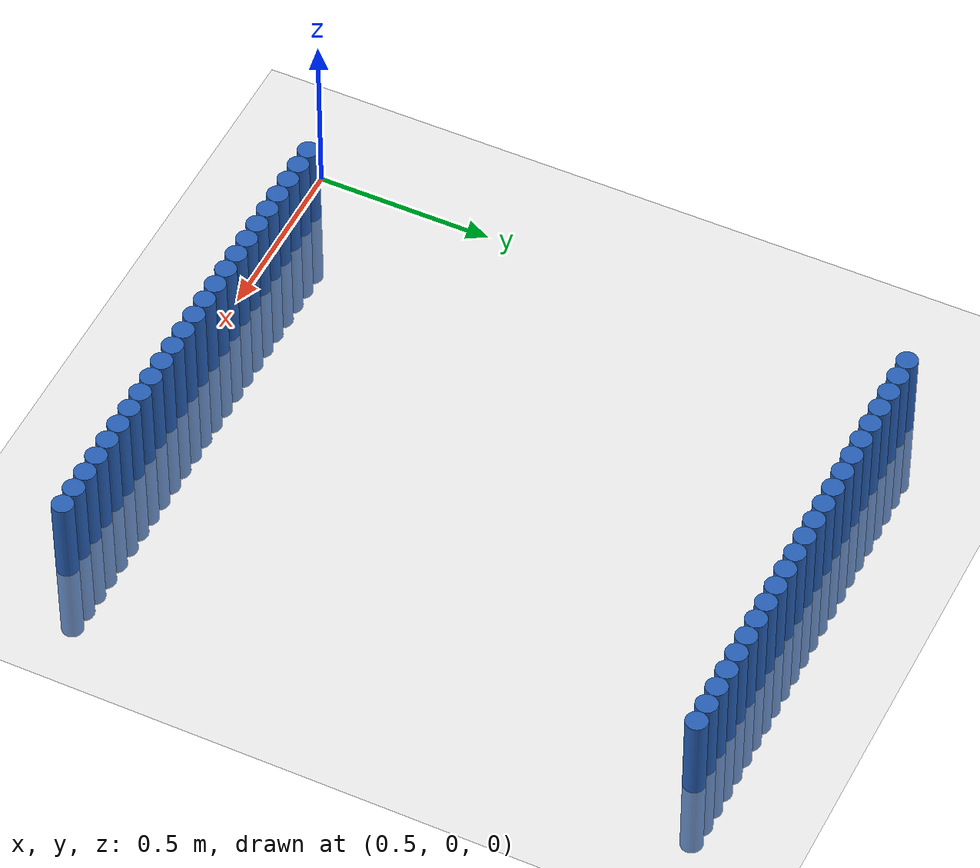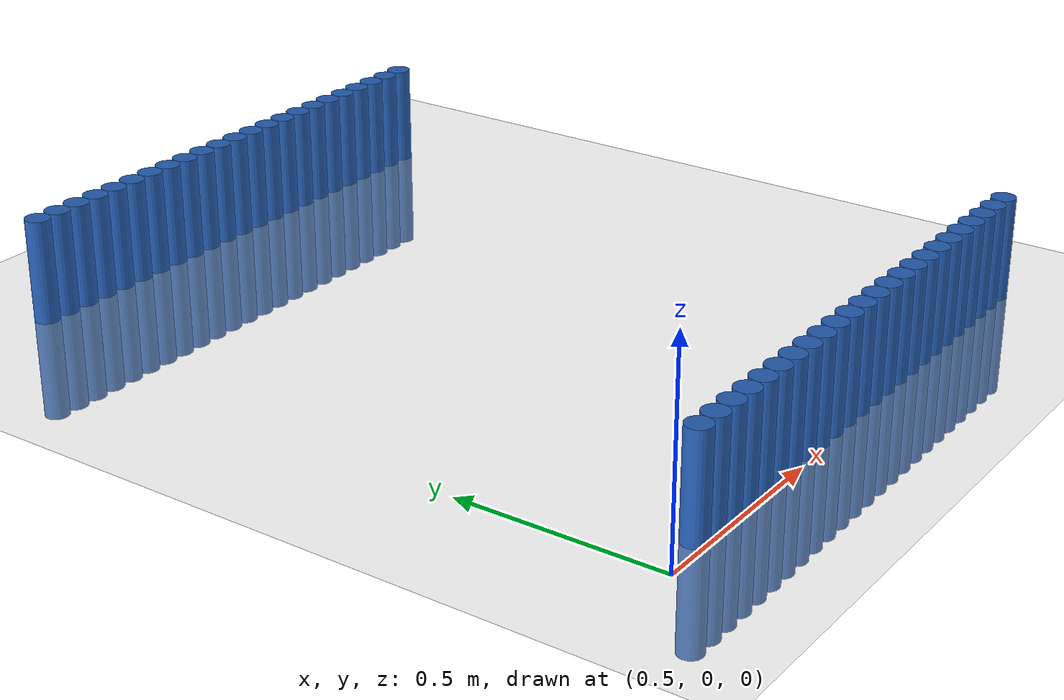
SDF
<sdf version="1.6">
 <world name="default">
  <model name="ground_plane">
   <static>1</static>
   <link name="link">
    <collision name="collision">
     <geometry><plane><normal>0 0 1</normal><size>100 100</size></plane></geometry>
     <surface><friction><ode><mu>100</mu><mu2>50</mu2></ode></friction></surface>
    </collision>
    <visual name="visual">
     <cast_shadows>0</cast_shadows>
     <geometry><plane><normal>0 0 1</normal><size>100 100</size></plane></geometry>
     <material>
      <script><uri>file://media/materials/scripts/gazebo.material</uri><name>Gazebo/Grey</name></script>
     </material>
    </visual>
   </link>
  </model>
  <model name="unit_cylinder_47">
   <static>1</static>
   <pose>0.630000 0.030000 0.000000 0.000000 0.000000 0.000000</pose>
   <link name="link">
    <inertial>
     <mass>1</mass>
     <inertia><ixx>0.145833</ixx><ixy>0</ixy><ixz>0</ixz><iyy>0.145833</iyy><iyz>0</iyz><izz>0.125</izz></inertia>
    </inertial>
    <collision name="collision">
     <geometry><cylinder><radius>0.030000</radius><length>0.5</length></cylinder></geometry>
    </collision>
    <visual name="visual">
     <geometry><cylinder><radius>0.030000</radius><length>0.5</length></cylinder></geometry>
     <material>
      <ambient>0.152000 0.379000 0.720000 1</ambient>
      <diffuse>0.152000 0.379000 0.720000 1</diffuse>
     </material>
     <material>
      <script><name>Gazebo/Grey</name><uri>file://media/materials/scripts/gazebo.material</uri></script>
     </material>
    </visual>
   </link>
  </model>
  <model name="unit_cylinder_48">
   <static>1</static>
   <pose>0.630000 1.770000 0.000000 0.000000 0.000000 0.000000</pose>
   <link name="link">
    <inertial>
     <mass>1</mass>
     <inertia><ixx>0.145833</ixx><ixy>0</ixy><ixz>0</ixz><iyy>0.145833</iyy><iyz>0</iyz><izz>0.125</izz></inertia>
    </inertial>
    <collision name="collision">
     <geometry><cylinder><radius>0.030000</radius><length>0.5</length></cylinder></geometry>
    </collision>
    <visual name="visual">
     <geometry><cylinder><radius>0.030000</radius><length>0.5</length></cylinder></geometry>
     <material>
      <ambient>0.152000 0.379000 0.720000 1</ambient>
      <diffuse>0.152000 0.379000 0.720000 1</diffuse>
     </material>
     <material>
      <script><name>Gazebo/Grey</name><uri>file://media/materials/scripts/gazebo.material</uri></script>
     </material>
    </visual>
   </link>
  </model>
  <model name="unit_cylinder_49">
   <static>1</static>
   <pose>0.690000 0.030000 0.000000 0.000000 0.000000 0.000000</pose>
   <link name="link">
    <inertial>
     <mass>1</mass>
     <inertia><ixx>0.145833</ixx><ixy>0</ixy><ixz>0</ixz><iyy>0.145833</iyy><iyz>0</iyz><izz>0.125</izz></inertia>
    </inertial>
    <collision name="collision">
     <geometry><cylinder><radius>0.030000</radius><length>0.5</length></cylinder></geometry>
    </collision>
    <visual name="visual">
     <geometry><cylinder><radius>0.030000</radius><length>0.5</length></cylinder></geometry>
     <material>
      <ambient>0.152000 0.379000 0.720000 1</ambient>
      <diffuse>0.152000 0.379000 0.720000 1</diffuse>
     </material>
     <material>
      <script><name>Gazebo/Grey</name><uri>file://media/materials/scripts/gazebo.material</uri></script>
     </material>
    </visual>
   </link>
  </model>
  <model name="unit_cylinder_50">
   <static>1</static>
   <pose>0.690000 1.770000 0.000000 0.000000 0.000000 0.000000</pose>
   <link name="link">
    <inertial>
     <mass>1</mass>
     <inertia><ixx>0.145833</ixx><ixy>0</ixy><ixz>0</ixz><iyy>0.145833</iyy><iyz>0</iyz><izz>0.125</izz></inertia>
    </inertial>
    <collision name="collision">
     <geometry><cylinder><radius>0.030000</radius><length>0.5</length></cylinder></geometry>
    </collision>
    <visual name="visual">
     <geometry><cylinder><radius>0.030000</radius><length>0.5</length></cylinder></geometry>
     <material>
      <ambient>0.152000 0.379000 0.720000 1</ambient>
      <diffuse>0.152000 0.379000 0.720000 1</diffuse>
     </material>
     <material>
      <script><name>Gazebo/Grey</name><uri>file://media/materials/scripts/gazebo.material</uri></script>
     </material>
    </visual>
   </link>
  </model>
  <model name="unit_cylinder_51">
   <static>1</static>
   <pose>0.750000 0.030000 0.000000 0.000000 0.000000 0.000000</pose>
   <link name="link">
    <inertial>
     <mass>1</mass>
     <inertia><ixx>0.145833</ixx><ixy>0</ixy><ixz>0</ixz><iyy>0.145833</iyy><iyz>0</iyz><izz>0.125</izz></inertia>
    </inertial>
    <collision name="collision">
     <geometry><cylinder><radius>0.030000</radius><length>0.5</length></cylinder></geometry>
    </collision>
    <visual name="visual">
     <geometry><cylinder><radius>0.030000</radius><length>0.5</length></cylinder></geometry>
     <material>
      <ambient>0.152000 0.379000 0.720000 1</ambient>
      <diffuse>0.152000 0.379000 0.720000 1</diffuse>
     </material>
     <material>
      <script><name>Gazebo/Grey</name><uri>file://media/materials/scripts/gazebo.material</uri></script>
     </material>
    </visual>
   </link>
  </model>
  <model name="unit_cylinder_52">
   <static>1</static>
   <pose>0.750000 1.770000 0.000000 0.000000 0.000000 0.000000</pose>
   <link name="link">
    <inertial>
     <mass>1</mass>
     <inertia><ixx>0.145833</ixx><ixy>0</ixy><ixz>0</ixz><iyy>0.145833</iyy><iyz>0</iyz><izz>0.125</izz></inertia>
    </inertial>
    <collision name="collision">
     <geometry><cylinder><radius>0.030000</radius><length>0.5</length></cylinder></geometry>
    </collision>
    <visual name="visual">
     <geometry><cylinder><radius>0.030000</radius><length>0.5</length></cylinder></geometry>
     <material>
      <ambient>0.152000 0.379000 0.720000 1</ambient>
      <diffuse>0.152000 0.379000 0.720000 1</diffuse>
     </material>
     <material>
      <script><name>Gazebo/Grey</name><uri>file://media/materials/scripts/gazebo.material</uri></script>
     </material>
    </visual>
   </link>
  </model>
  <model name="unit_cylinder_53">
   <static>1</static>
   <pose>0.810000 0.030000 0.000000 0.000000 0.000000 0.000000</pose>
   <link name="link">
    <inertial>
     <mass>1</mass>
     <inertia><ixx>0.145833</ixx><ixy>0</ixy><ixz>0</ixz><iyy>0.145833</iyy><iyz>0</iyz><izz>0.125</izz></inertia>
    </inertial>
    <collision name="collision">
     <geometry><cylinder><radius>0.030000</radius><length>0.5</length></cylinder></geometry>
    </collision>
    <visual name="visual">
     <geometry><cylinder><radius>0.030000</radius><length>0.5</length></cylinder></geometry>
     <material>
      <ambient>0.152000 0.379000 0.720000 1</ambient>
      <diffuse>0.152000 0.379000 0.720000 1</diffuse>
     </material>
     <material>
      <script><name>Gazebo/Grey</name><uri>file://media/materials/scripts/gazebo.material</uri></script>
     </material>
    </visual>
   </link>
  </model>
  <model name="unit_cylinder_54">
   <static>1</static>
   <pose>0.810000 1.770000 0.000000 0.000000 0.000000 0.000000</pose>
   <link name="link">
    <inertial>
     <mass>1</mass>
     <inertia><ixx>0.145833</ixx><ixy>0</ixy><ixz>0</ixz><iyy>0.145833</iyy><iyz>0</iyz><izz>0.125</izz></inertia>
    </inertial>
    <collision name="collision">
     <geometry><cylinder><radius>0.030000</radius><length>0.5</length></cylinder></geometry>
    </collision>
    <visual name="visual">
     <geometry><cylinder><radius>0.030000</radius><length>0.5</length></cylinder></geometry>
     <material>
      <ambient>0.152000 0.379000 0.720000 1</ambient>
      <diffuse>0.152000 0.379000 0.720000 1</diffuse>
     </material>
     <material>
      <script><name>Gazebo/Grey</name><uri>file://media/materials/scripts/gazebo.material</uri></script>
     </material>
    </visual>
   </link>
  </model>
  <model name="unit_cylinder_55">
   <static>1</static>
   <pose>0.870000 0.030000 0.000000 0.000000 0.000000 0.000000</pose>
   <link name="link">
    <inertial>
     <mass>1</mass>
     <inertia><ixx>0.145833</ixx><ixy>0</ixy><ixz>0</ixz><iyy>0.145833</iyy><iyz>0</iyz><izz>0.125</izz></inertia>
    </inertial>
    <collision name="collision">
     <geometry><cylinder><radius>0.030000</radius><length>0.5</length></cylinder></geometry>
    </collision>
    <visual name="visual">
     <geometry><cylinder><radius>0.030000</radius><length>0.5</length></cylinder></geometry>
     <material>
      <ambient>0.152000 0.379000 0.720000 1</ambient>
      <diffuse>0.152000 0.379000 0.720000 1</diffuse>
     </material>
     <material>
      <script><name>Gazebo/Grey</name><uri>file://media/materials/scripts/gazebo.material</uri></script>
     </material>
    </visual>
   </link>
  </model>
  <model name="unit_cylinder_56">
   <static>1</static>
   <pose>0.870000 1.770000 0.000000 0.000000 0.000000 0.000000</pose>
   <link name="link">
    <inertial>
     <mass>1</mass>
     <inertia><ixx>0.145833</ixx><ixy>0</ixy><ixz>0</ixz><iyy>0.145833</iyy><iyz>0</iyz><izz>0.125</izz></inertia>
    </inertial>
    <collision name="collision">
     <geometry><cylinder><radius>0.030000</radius><length>0.5</length></cylinder></geometry>
    </collision>
    <visual name="visual">
     <geometry><cylinder><radius>0.030000</radius><length>0.5</length></cylinder></geometry>
     <material>
      <ambient>0.152000 0.379000 0.720000 1</ambient>
      <diffuse>0.152000 0.379000 0.720000 1</diffuse>
     </material>
     <material>
      <script><name>Gazebo/Grey</name><uri>file://media/materials/scripts/gazebo.material</uri></script>
     </material>
    </visual>
   </link>
  </model>
  <model name="unit_cylinder_57">
   <static>1</static>
   <pose>0.930000 0.030000 0.000000 0.000000 0.000000 0.000000</pose>
   <link name="link">
    <inertial>
     <mass>1</mass>
     <inertia><ixx>0.145833</ixx><ixy>0</ixy><ixz>0</ixz><iyy>0.145833</iyy><iyz>0</iyz><izz>0.125</izz></inertia>
    </inertial>
    <collision name="collision">
     <geometry><cylinder><radius>0.030000</radius><length>0.5</length></cylinder></geometry>
    </collision>
    <visual name="visual">
     <geometry><cylinder><radius>0.030000</radius><length>0.5</length></cylinder></geometry>
     <material>
      <ambient>0.152000 0.379000 0.720000 1</ambient>
      <diffuse>0.152000 0.379000 0.720000 1</diffuse>
     </material>
     <material>
      <script><name>Gazebo/Grey</name><uri>file://media/materials/scripts/gazebo.material</uri></script>
     </material>
    </visual>
   </link>
  </model>
  <model name="unit_cylinder_58">
   <static>1</static>
   <pose>0.930000 1.770000 0.000000 0.000000 0.000000 0.000000</pose>
   <link name="link">
    <inertial>
     <mass>1</mass>
     <inertia><ixx>0.145833</ixx><ixy>0</ixy><ixz>0</ixz><iyy>0.145833</iyy><iyz>0</iyz><izz>0.125</izz></inertia>
    </inertial>
    <collision name="collision">
     <geometry><cylinder><radius>0.030000</radius><length>0.5</length></cylinder></geometry>
    </collision>
    <visual name="visual">
     <geometry><cylinder><radius>0.030000</radius><length>0.5</length></cylinder></geometry>
     <material>
      <ambient>0.152000 0.379000 0.720000 1</ambient>
      <diffuse>0.152000 0.379000 0.720000 1</diffuse>
     </material>
     <material>
      <script><name>Gazebo/Grey</name><uri>file://media/materials/scripts/gazebo.material</uri></script>
     </material>
    </visual>
   </link>
  </model>
  <model name="unit_cylinder_59">
   <static>1</static>
   <pose>0.990000 0.030000 0.000000 0.000000 0.000000 0.000000</pose>
   <link name="link">
    <inertial>
     <mass>1</mass>
     <inertia><ixx>0.145833</ixx><ixy>0</ixy><ixz>0</ixz><iyy>0.145833</iyy><iyz>0</iyz><izz>0.125</izz></inertia>
    </inertial>
    <collision name="collision">
     <geometry><cylinder><radius>0.030000</radius><length>0.5</length></cylinder></geometry>
    </collision>
    <visual name="visual">
     <geometry><cylinder><radius>0.030000</radius><length>0.5</length></cylinder></geometry>
     <material>
      <ambient>0.152000 0.379000 0.720000 1</ambient>
      <diffuse>0.152000 0.379000 0.720000 1</diffuse>
     </material>
     <material>
      <script><name>Gazebo/Grey</name><uri>file://media/materials/scripts/gazebo.material</uri></script>
     </material>
    </visual>
   </link>
  </model>
  <model name="unit_cylinder_60">
   <static>1</static>
   <pose>0.990000 1.770000 0.000000 0.000000 0.000000 0.000000</pose>
   <link name="link">
    <inertial>
     <mass>1</mass>
     <inertia><ixx>0.145833</ixx><ixy>0</ixy><ixz>0</ixz><iyy>0.145833</iyy><iyz>0</iyz><izz>0.125</izz></inertia>
    </inertial>
    <collision name="collision">
     <geometry><cylinder><radius>0.030000</radius><length>0.5</length></cylinder></geometry>
    </collision>
    <visual name="visual">
     <geometry><cylinder><radius>0.030000</radius><length>0.5</length></cylinder></geometry>
     <material>
      <ambient>0.152000 0.379000 0.720000 1</ambient>
      <diffuse>0.152000 0.379000 0.720000 1</diffuse>
     </material>
     <material>
      <script><name>Gazebo/Grey</name><uri>file://media/materials/scripts/gazebo.material</uri></script>
     </material>
    </visual>
   </link>
  </model>
  <model name="unit_cylinder_61">
   <static>1</static>
   <pose>1.050000 0.030000 0.000000 0.000000 0.000000 0.000000</pose>
   <link name="link">
    <inertial>
     <mass>1</mass>
     <inertia><ixx>0.145833</ixx><ixy>0</ixy><ixz>0</ixz><iyy>0.145833</iyy><iyz>0</iyz><izz>0.125</izz></inertia>
    </inertial>
    <collision name="collision">
     <geometry><cylinder><radius>0.030000</radius><length>0.5</length></cylinder></geometry>
    </collision>
    <visual name="visual">
     <geometry><cylinder><radius>0.030000</radius><length>0.5</length></cylinder></geometry>
     <material>
      <ambient>0.152000 0.379000 0.720000 1</ambient>
      <diffuse>0.152000 0.379000 0.720000 1</diffuse>
     </material>
     <material>
      <script><name>Gazebo/Grey</name><uri>file://media/materials/scripts/gazebo.material</uri></script>
     </material>
    </visual>
   </link>
  </model>
  <model name="unit_cylinder_62">
   <static>1</static>
   <pose>1.050000 1.770000 0.000000 0.000000 0.000000 0.000000</pose>
   <link name="link">
    <inertial>
     <mass>1</mass>
     <inertia><ixx>0.145833</ixx><ixy>0</ixy><ixz>0</ixz><iyy>0.145833</iyy><iyz>0</iyz><izz>0.125</izz></inertia>
    </inertial>
    <collision name="collision">
     <geometry><cylinder><radius>0.030000</radius><length>0.5</length></cylinder></geometry>
    </collision>
    <visual name="visual">
     <geometry><cylinder><radius>0.030000</radius><length>0.5</length></cylinder></geometry>
     <material>
      <ambient>0.152000 0.379000 0.720000 1</ambient>
      <diffuse>0.152000 0.379000 0.720000 1</diffuse>
     </material>
     <material>
      <script><name>Gazebo/Grey</name><uri>file://media/materials/scripts/gazebo.material</uri></script>
     </material>
    </visual>
   </link>
  </model>
  <model name="unit_cylinder_63">
   <static>1</static>
   <pose>1.110000 0.030000 0.000000 0.000000 0.000000 0.000000</pose>
   <link name="link">
    <inertial>
     <mass>1</mass>
     <inertia><ixx>0.145833</ixx><ixy>0</ixy><ixz>0</ixz><iyy>0.145833</iyy><iyz>0</iyz><izz>0.125</izz></inertia>
    </inertial>
    <collision name="collision">
     <geometry><cylinder><radius>0.030000</radius><length>0.5</length></cylinder></geometry>
    </collision>
    <visual name="visual">
     <geometry><cylinder><radius>0.030000</radius><length>0.5</length></cylinder></geometry>
     <material>
      <ambient>0.152000 0.379000 0.720000 1</ambient>
      <diffuse>0.152000 0.379000 0.720000 1</diffuse>
     </material>
     <material>
      <script><name>Gazebo/Grey</name><uri>file://media/materials/scripts/gazebo.material</uri></script>
     </material>
    </visual>
   </link>
  </model>
  <model name="unit_cylinder_64">
   <static>1</static>
   <pose>1.110000 1.770000 0.000000 0.000000 0.000000 0.000000</pose>
   <link name="link">
    <inertial>
     <mass>1</mass>
     <inertia><ixx>0.145833</ixx><ixy>0</ixy><ixz>0</ixz><iyy>0.145833</iyy><iyz>0</iyz><izz>0.125</izz></inertia>
    </inertial>
    <collision name="collision">
     <geometry><cylinder><radius>0.030000</radius><length>0.5</length></cylinder></geometry>
    </collision>
    <visual name="visual">
     <geometry><cylinder><radius>0.030000</radius><length>0.5</length></cylinder></geometry>
     <material>
      <ambient>0.152000 0.379000 0.720000 1</ambient>
      <diffuse>0.152000 0.379000 0.720000 1</diffuse>
     </material>
     <material>
      <script><name>Gazebo/Grey</name><uri>file://media/materials/scripts/gazebo.material</uri></script>
     </material>
    </visual>
   </link>
  </model>
  <model name="unit_cylinder_65">
   <static>1</static>
   <pose>1.170000 0.030000 0.000000 0.000000 0.000000 0.000000</pose>
   <link name="link">
    <inertial>
     <mass>1</mass>
     <inertia><ixx>0.145833</ixx><ixy>0</ixy><ixz>0</ixz><iyy>0.145833</iyy><iyz>0</iyz><izz>0.125</izz></inertia>
    </inertial>
    <collision name="collision">
     <geometry><cylinder><radius>0.030000</radius><length>0.5</length></cylinder></geometry>
    </collision>
    <visual name="visual">
     <geometry><cylinder><radius>0.030000</radius><length>0.5</length></cylinder></geometry>
     <material>
      <ambient>0.152000 0.379000 0.720000 1</ambient>
      <diffuse>0.152000 0.379000 0.720000 1</diffuse>
     </material>
     <material>
      <script><name>Gazebo/Grey</name><uri>file://media/materials/scripts/gazebo.material</uri></script>
     </material>
    </visual>
   </link>
  </model>
  <model name="unit_cylinder_66">
   <static>1</static>
   <pose>1.170000 1.770000 0.000000 0.000000 0.000000 0.000000</pose>
   <link name="link">
    <inertial>
     <mass>1</mass>
     <inertia><ixx>0.145833</ixx><ixy>0</ixy><ixz>0</ixz><iyy>0.145833</iyy><iyz>0</iyz><izz>0.125</izz></inertia>
    </inertial>
    <collision name="collision">
     <geometry><cylinder><radius>0.030000</radius><length>0.5</length></cylinder></geometry>
    </collision>
    <visual name="visual">
     <geometry><cylinder><radius>0.030000</radius><length>0.5</length></cylinder></geometry>
     <material>
      <ambient>0.152000 0.379000 0.720000 1</ambient>
      <diffuse>0.152000 0.379000 0.720000 1</diffuse>
     </material>
     <material>
      <script><name>Gazebo/Grey</name><uri>file://media/materials/scripts/gazebo.material</uri></script>
     </material>
    </visual>
   </link>
  </model>
  <model name="unit_cylinder_67">
   <static>1</static>
   <pose>1.230000 0.030000 0.000000 0.000000 0.000000 0.000000</pose>
   <link name="link">
    <inertial>
     <mass>1</mass>
     <inertia><ixx>0.145833</ixx><ixy>0</ixy><ixz>0</ixz><iyy>0.145833</iyy><iyz>0</iyz><izz>0.125</izz></inertia>
    </inertial>
    <collision name="collision">
     <geometry><cylinder><radius>0.030000</radius><length>0.5</length></cylinder></geometry>
    </collision>
    <visual name="visual">
     <geometry><cylinder><radius>0.030000</radius><length>0.5</length></cylinder></geometry>
     <material>
      <ambient>0.152000 0.379000 0.720000 1</ambient>
      <diffuse>0.152000 0.379000 0.720000 1</diffuse>
     </material>
     <material>
      <script><name>Gazebo/Grey</name><uri>file://media/materials/scripts/gazebo.material</uri></script>
     </material>
    </visual>
   </link>
  </model>
  <model name="unit_cylinder_68">
   <static>1</static>
   <pose>1.230000 1.770000 0.000000 0.000000 0.000000 0.000000</pose>
   <link name="link">
    <inertial>
     <mass>1</mass>
     <inertia><ixx>0.145833</ixx><ixy>0</ixy><ixz>0</ixz><iyy>0.145833</iyy><iyz>0</iyz><izz>0.125</izz></inertia>
    </inertial>
    <collision name="collision">
     <geometry><cylinder><radius>0.030000</radius><length>0.5</length></cylinder></geometry>
    </collision>
    <visual name="visual">
     <geometry><cylinder><radius>0.030000</radius><length>0.5</length></cylinder></geometry>
     <material>
      <ambient>0.152000 0.379000 0.720000 1</ambient>
      <diffuse>0.152000 0.379000 0.720000 1</diffuse>
     </material>
     <material>
      <script><name>Gazebo/Grey</name><uri>file://media/materials/scripts/gazebo.material</uri></script>
     </material>
    </visual>
   </link>
  </model>
  <model name="unit_cylinder_69">
   <static>1</static>
   <pose>1.290000 0.030000 0.000000 0.000000 0.000000 0.000000</pose>
   <link name="link">
    <inertial>
     <mass>1</mass>
     <inertia><ixx>0.145833</ixx><ixy>0</ixy><ixz>0</ixz><iyy>0.145833</iyy><iyz>0</iyz><izz>0.125</izz></inertia>
    </inertial>
    <collision name="collision">
     <geometry><cylinder><radius>0.030000</radius><length>0.5</length></cylinder></geometry>
    </collision>
    <visual name="visual">
     <geometry><cylinder><radius>0.030000</radius><length>0.5</length></cylinder></geometry>
     <material>
      <ambient>0.152000 0.379000 0.720000 1</ambient>
      <diffuse>0.152000 0.379000 0.720000 1</diffuse>
     </material>
     <material>
      <script><name>Gazebo/Grey</name><uri>file://media/materials/scripts/gazebo.material</uri></script>
     </material>
    </visual>
   </link>
  </model>
  <model name="unit_cylinder_70">
   <static>1</static>
   <pose>1.290000 1.770000 0.000000 0.000000 0.000000 0.000000</pose>
   <link name="link">
    <inertial>
     <mass>1</mass>
     <inertia><ixx>0.145833</ixx><ixy>0</ixy><ixz>0</ixz><iyy>0.145833</iyy><iyz>0</iyz><izz>0.125</izz></inertia>
    </inertial>
    <collision name="collision">
     <geometry><cylinder><radius>0.030000</radius><length>0.5</length></cylinder></geometry>
    </collision>
    <visual name="visual">
     <geometry><cylinder><radius>0.030000</radius><length>0.5</length></cylinder></geometry>
     <material>
      <ambient>0.152000 0.379000 0.720000 1</ambient>
      <diffuse>0.152000 0.379000 0.720000 1</diffuse>
     </material>
     <material>
      <script><name>Gazebo/Grey</name><uri>file://media/materials/scripts/gazebo.material</uri></script>
     </material>
    </visual>
   </link>
  </model>
  <model name="unit_cylinder_71">
   <static>1</static>
   <pose>1.350000 0.030000 0.000000 0.000000 0.000000 0.000000</pose>
   <link name="link">
    <inertial>
     <mass>1</mass>
     <inertia><ixx>0.145833</ixx><ixy>0</ixy><ixz>0</ixz><iyy>0.145833</iyy><iyz>0</iyz><izz>0.125</izz></inertia>
    </inertial>
    <collision name="collision">
     <geometry><cylinder><radius>0.030000</radius><length>0.5</length></cylinder></geometry>
    </collision>
    <visual name="visual">
     <geometry><cylinder><radius>0.030000</radius><length>0.5</length></cylinder></geometry>
     <material>
      <ambient>0.152000 0.379000 0.720000 1</ambient>
      <diffuse>0.152000 0.379000 0.720000 1</diffuse>
     </material>
     <material>
      <script><name>Gazebo/Grey</name><uri>file://media/materials/scripts/gazebo.material</uri></script>
     </material>
    </visual>
   </link>
  </model>
  <model name="unit_cylinder_72">
   <static>1</static>
   <pose>1.350000 1.770000 0.000000 0.000000 0.000000 0.000000</pose>
   <link name="link">
    <inertial>
     <mass>1</mass>
     <inertia><ixx>0.145833</ixx><ixy>0</ixy><ixz>0</ixz><iyy>0.145833</iyy><iyz>0</iyz><izz>0.125</izz></inertia>
    </inertial>
    <collision name="collision">
     <geometry><cylinder><radius>0.030000</radius><length>0.5</length></cylinder></geometry>
    </collision>
    <visual name="visual">
     <geometry><cylinder><radius>0.030000</radius><length>0.5</length></cylinder></geometry>
     <material>
      <ambient>0.152000 0.379000 0.720000 1</ambient>
      <diffuse>0.152000 0.379000 0.720000 1</diffuse>
     </material>
     <material>
      <script><name>Gazebo/Grey</name><uri>file://media/materials/scripts/gazebo.material</uri></script>
     </material>
    </visual>
   </link>
  </model>
  <model name="unit_cylinder_73">
   <static>1</static>
   <pose>1.410000 0.030000 0.000000 0.000000 0.000000 0.000000</pose>
   <link name="link">
    <inertial>
     <mass>1</mass>
     <inertia><ixx>0.145833</ixx><ixy>0</ixy><ixz>0</ixz><iyy>0.145833</iyy><iyz>0</iyz><izz>0.125</izz></inertia>
    </inertial>
    <collision name="collision">
     <geometry><cylinder><radius>0.030000</radius><length>0.5</length></cylinder></geometry>
    </collision>
    <visual name="visual">
     <geometry><cylinder><radius>0.030000</radius><length>0.5</length></cylinder></geometry>
     <material>
      <ambient>0.152000 0.379000 0.720000 1</ambient>
      <diffuse>0.152000 0.379000 0.720000 1</diffuse>
     </material>
     <material>
      <script><name>Gazebo/Grey</name><uri>file://media/materials/scripts/gazebo.material</uri></script>
     </material>
    </visual>
   </link>
  </model>
  <model name="unit_cylinder_74">
   <static>1</static>
   <pose>1.410000 1.770000 0.000000 0.000000 0.000000 0.000000</pose>
   <link name="link">
    <inertial>
     <mass>1</mass>
     <inertia><ixx>0.145833</ixx><ixy>0</ixy><ixz>0</ixz><iyy>0.145833</iyy><iyz>0</iyz><izz>0.125</izz></inertia>
    </inertial>
    <collision name="collision">
     <geometry><cylinder><radius>0.030000</radius><length>0.5</length></cylinder></geometry>
    </collision>
    <visual name="visual">
     <geometry><cylinder><radius>0.030000</radius><length>0.5</length></cylinder></geometry>
     <material>
      <ambient>0.152000 0.379000 0.720000 1</ambient>
      <diffuse>0.152000 0.379000 0.720000 1</diffuse>
     </material>
     <material>
      <script><name>Gazebo/Grey</name><uri>file://media/materials/scripts/gazebo.material</uri></script>
     </material>
    </visual>
   </link>
  </model>
  <model name="unit_cylinder_75">
   <static>1</static>
   <pose>1.470000 0.030000 0.000000 0.000000 0.000000 0.000000</pose>
   <link name="link">
    <inertial>
     <mass>1</mass>
     <inertia><ixx>0.145833</ixx><ixy>0</ixy><ixz>0</ixz><iyy>0.145833</iyy><iyz>0</iyz><izz>0.125</izz></inertia>
    </inertial>
    <collision name="collision">
     <geometry><cylinder><radius>0.030000</radius><length>0.5</length></cylinder></geometry>
    </collision>
    <visual name="visual">
     <geometry><cylinder><radius>0.030000</radius><length>0.5</length></cylinder></geometry>
     <material>
      <ambient>0.152000 0.379000 0.720000 1</ambient>
      <diffuse>0.152000 0.379000 0.720000 1</diffuse>
     </material>
     <material>
      <script><name>Gazebo/Grey</name><uri>file://media/materials/scripts/gazebo.material</uri></script>
     </material>
    </visual>
   </link>
  </model>
  <model name="unit_cylinder_76">
   <static>1</static>
   <pose>1.470000 1.770000 0.000000 0.000000 0.000000 0.000000</pose>
   <link name="link">
    <inertial>
     <mass>1</mass>
     <inertia><ixx>0.145833</ixx><ixy>0</ixy><ixz>0</ixz><iyy>0.145833</iyy><iyz>0</iyz><izz>0.125</izz></inertia>
    </inertial>
    <collision name="collision">
     <geometry><cylinder><radius>0.030000</radius><length>0.5</length></cylinder></geometry>
    </collision>
    <visual name="visual">
     <geometry><cylinder><radius>0.030000</radius><length>0.5</length></cylinder></geometry>
     <material>
      <ambient>0.152000 0.379000 0.720000 1</ambient>
      <diffuse>0.152000 0.379000 0.720000 1</diffuse>
     </material>
     <material>
      <script><name>Gazebo/Grey</name><uri>file://media/materials/scripts/gazebo.material</uri></script>
     </material>
    </visual>
   </link>
  </model>
  <model name="unit_cylinder_77">
   <static>1</static>
   <pose>1.530000 0.030000 0.000000 0.000000 0.000000 0.000000</pose>
   <link name="link">
    <inertial>
     <mass>1</mass>
     <inertia><ixx>0.145833</ixx><ixy>0</ixy><ixz>0</ixz><iyy>0.145833</iyy><iyz>0</iyz><izz>0.125</izz></inertia>
    </inertial>
    <collision name="collision">
     <geometry><cylinder><radius>0.030000</radius><length>0.5</length></cylinder></geometry>
    </collision>
    <visual name="visual">
     <geometry><cylinder><radius>0.030000</radius><length>0.5</length></cylinder></geometry>
     <material>
      <ambient>0.152000 0.379000 0.720000 1</ambient>
      <diffuse>0.152000 0.379000 0.720000 1</diffuse>
     </material>
     <material>
      <script><name>Gazebo/Grey</name><uri>file://media/materials/scripts/gazebo.material</uri></script>
     </material>
    </visual>
   </link>
  </model>
  <model name="unit_cylinder_78">
   <static>1</static>
   <pose>1.530000 1.770000 0.000000 0.000000 0.000000 0.000000</pose>
   <link name="link">
    <inertial>
     <mass>1</mass>
     <inertia><ixx>0.145833</ixx><ixy>0</ixy><ixz>0</ixz><iyy>0.145833</iyy><iyz>0</iyz><izz>0.125</izz></inertia>
    </inertial>
    <collision name="collision">
     <geometry><cylinder><radius>0.030000</radius><length>0.5</length></cylinder></geometry>
    </collision>
    <visual name="visual">
     <geometry><cylinder><radius>0.030000</radius><length>0.5</length></cylinder></geometry>
     <material>
      <ambient>0.152000 0.379000 0.720000 1</ambient>
      <diffuse>0.152000 0.379000 0.720000 1</diffuse>
     </material>
     <material>
      <script><name>Gazebo/Grey</name><uri>file://media/materials/scripts/gazebo.material</uri></script>
     </material>
    </visual>
   </link>
  </model>
  <model name="unit_cylinder_79">
   <static>1</static>
   <pose>1.590000 0.030000 0.000000 0.000000 0.000000 0.000000</pose>
   <link name="link">
    <inertial>
     <mass>1</mass>
     <inertia><ixx>0.145833</ixx><ixy>0</ixy><ixz>0</ixz><iyy>0.145833</iyy><iyz>0</iyz><izz>0.125</izz></inertia>
    </inertial>
    <collision name="collision">
     <geometry><cylinder><radius>0.030000</radius><length>0.5</length></cylinder></geometry>
    </collision>
    <visual name="visual">
     <geometry><cylinder><radius>0.030000</radius><length>0.5</length></cylinder></geometry>
     <material>
      <ambient>0.152000 0.379000 0.720000 1</ambient>
      <diffuse>0.152000 0.379000 0.720000 1</diffuse>
     </material>
     <material>
      <script><name>Gazebo/Grey</name><uri>file://media/materials/scripts/gazebo.material</uri></script>
     </material>
    </visual>
   </link>
  </model>
  <model name="unit_cylinder_80">
   <static>1</static>
   <pose>1.590000 1.770000 0.000000 0.000000 0.000000 0.000000</pose>
   <link name="link">
    <inertial>
     <mass>1</mass>
     <inertia><ixx>0.145833</ixx><ixy>0</ixy><ixz>0</ixz><iyy>0.145833</iyy><iyz>0</iyz><izz>0.125</izz></inertia>
    </inertial>
    <collision name="collision">
     <geometry><cylinder><radius>0.030000</radius><length>0.5</length></cylinder></geometry>
    </collision>
    <visual name="visual">
     <geometry><cylinder><radius>0.030000</radius><length>0.5</length></cylinder></geometry>
     <material>
      <ambient>0.152000 0.379000 0.720000 1</ambient>
      <diffuse>0.152000 0.379000 0.720000 1</diffuse>
     </material>
     <material>
      <script><name>Gazebo/Grey</name><uri>file://media/materials/scripts/gazebo.material</uri></script>
     </material>
    </visual>
   </link>
  </model>
  <model name="unit_cylinder_81">
   <static>1</static>
   <pose>1.650000 0.030000 0.000000 0.000000 0.000000 0.000000</pose>
   <link name="link">
    <inertial>
     <mass>1</mass>
     <inertia><ixx>0.145833</ixx><ixy>0</ixy><ixz>0</ixz><iyy>0.145833</iyy><iyz>0</iyz><izz>0.125</izz></inertia>
    </inertial>
    <collision name="collision">
     <geometry><cylinder><radius>0.030000</radius><length>0.5</length></cylinder></geometry>
    </collision>
    <visual name="visual">
     <geometry><cylinder><radius>0.030000</radius><length>0.5</length></cylinder></geometry>
     <material>
      <ambient>0.152000 0.379000 0.720000 1</ambient>
      <diffuse>0.152000 0.379000 0.720000 1</diffuse>
     </material>
     <material>
      <script><name>Gazebo/Grey</name><uri>file://media/materials/scripts/gazebo.material</uri></script>
     </material>
    </visual>
   </link>
  </model>
  <model name="unit_cylinder_82">
   <static>1</static>
   <pose>1.650000 1.770000 0.000000 0.000000 0.000000 0.000000</pose>
   <link name="link">
    <inertial>
     <mass>1</mass>
     <inertia><ixx>0.145833</ixx><ixy>0</ixy><ixz>0</ixz><iyy>0.145833</iyy><iyz>0</iyz><izz>0.125</izz></inertia>
    </inertial>
    <collision name="collision">
     <geometry><cylinder><radius>0.030000</radius><length>0.5</length></cylinder></geometry>
    </collision>
    <visual name="visual">
     <geometry><cylinder><radius>0.030000</radius><length>0.5</length></cylinder></geometry>
     <material>
      <ambient>0.152000 0.379000 0.720000 1</ambient>
      <diffuse>0.152000 0.379000 0.720000 1</diffuse>
     </material>
     <material>
      <script><name>Gazebo/Grey</name><uri>file://media/materials/scripts/gazebo.material</uri></script>
     </material>
    </visual>
   </link>
  </model>
  <model name="unit_cylinder_83">
   <static>1</static>
   <pose>1.710000 0.030000 0.000000 0.000000 0.000000 0.000000</pose>
   <link name="link">
    <inertial>
     <mass>1</mass>
     <inertia><ixx>0.145833</ixx><ixy>0</ixy><ixz>0</ixz><iyy>0.145833</iyy><iyz>0</iyz><izz>0.125</izz></inertia>
    </inertial>
    <collision name="collision">
     <geometry><cylinder><radius>0.030000</radius><length>0.5</length></cylinder></geometry>
    </collision>
    <visual name="visual">
     <geometry><cylinder><radius>0.030000</radius><length>0.5</length></cylinder></geometry>
     <material>
      <ambient>0.152000 0.379000 0.720000 1</ambient>
      <diffuse>0.152000 0.379000 0.720000 1</diffuse>
     </material>
     <material>
      <script><name>Gazebo/Grey</name><uri>file://media/materials/scripts/gazebo.material</uri></script>
     </material>
    </visual>
   </link>
  </model>
  <model name="unit_cylinder_84">
   <static>1</static>
   <pose>1.710000 1.770000 0.000000 0.000000 0.000000 0.000000</pose>
   <link name="link">
    <inertial>
     <mass>1</mass>
     <inertia><ixx>0.145833</ixx><ixy>0</ixy><ixz>0</ixz><iyy>0.145833</iyy><iyz>0</iyz><izz>0.125</izz></inertia>
    </inertial>
    <collision name="collision">
     <geometry><cylinder><radius>0.030000</radius><length>0.5</length></cylinder></geometry>
    </collision>
    <visual name="visual">
     <geometry><cylinder><radius>0.030000</radius><length>0.5</length></cylinder></geometry>
     <material>
      <ambient>0.152000 0.379000 0.720000 1</ambient>
      <diffuse>0.152000 0.379000 0.720000 1</diffuse>
     </material>
     <material>
      <script><name>Gazebo/Grey</name><uri>file://media/materials/scripts/gazebo.material</uri></script>
     </material>
    </visual>
   </link>
  </model>
  <model name="unit_cylinder_85">
   <static>1</static>
   <pose>1.770000 0.030000 0.000000 0.000000 0.000000 0.000000</pose>
   <link name="link">
    <inertial>
     <mass>1</mass>
     <inertia><ixx>0.145833</ixx><ixy>0</ixy><ixz>0</ixz><iyy>0.145833</iyy><iyz>0</iyz><izz>0.125</izz></inertia>
    </inertial>
    <collision name="collision">
     <geometry><cylinder><radius>0.030000</radius><length>0.5</length></cylinder></geometry>
    </collision>
    <visual name="visual">
     <geometry><cylinder><radius>0.030000</radius><length>0.5</length></cylinder></geometry>
     <material>
      <ambient>0.152000 0.379000 0.720000 1</ambient>
      <diffuse>0.152000 0.379000 0.720000 1</diffuse>
     </material>
     <material>
      <script><name>Gazebo/Grey</name><uri>file://media/materials/scripts/gazebo.material</uri></script>
     </material>
    </visual>
   </link>
  </model>
  <model name="unit_cylinder_86">
   <static>1</static>
   <pose>1.770000 1.770000 0.000000 0.000000 0.000000 0.000000</pose>
   <link name="link">
    <inertial>
     <mass>1</mass>
     <inertia><ixx>0.145833</ixx><ixy>0</ixy><ixz>0</ixz><iyy>0.145833</iyy><iyz>0</iyz><izz>0.125</izz></inertia>
    </inertial>
    <collision name="collision">
     <geometry><cylinder><radius>0.030000</radius><length>0.5</length></cylinder></geometry>
    </collision>
    <visual name="visual">
     <geometry><cylinder><radius>0.030000</radius><length>0.5</length></cylinder></geometry>
     <material>
      <ambient>0.152000 0.379000 0.720000 1</ambient>
      <diffuse>0.152000 0.379000 0.720000 1</diffuse>
     </material>
     <material>
      <script><name>Gazebo/Grey</name><uri>file://media/materials/scripts/gazebo.material</uri></script>
     </material>
    </visual>
   </link>
  </model>
  <model name="unit_cylinder_87">
   <static>1</static>
   <pose>1.830000 0.030000 0.000000 0.000000 0.000000 0.000000</pose>
   <link name="link">
    <inertial>
     <mass>1</mass>
     <inertia><ixx>0.145833</ixx><ixy>0</ixy><ixz>0</ixz><iyy>0.145833</iyy><iyz>0</iyz><izz>0.125</izz></inertia>
    </inertial>
    <collision name="collision">
     <geometry><cylinder><radius>0.030000</radius><length>0.5</length></cylinder></geometry>
    </collision>
    <visual name="visual">
     <geometry><cylinder><radius>0.030000</radius><length>0.5</length></cylinder></geometry>
     <material>
      <ambient>0.152000 0.379000 0.720000 1</ambient>
      <diffuse>0.152000 0.379000 0.720000 1</diffuse>
     </material>
     <material>
      <script><name>Gazebo/Grey</name><uri>file://media/materials/scripts/gazebo.material</uri></script>
     </material>
    </visual>
   </link>
  </model>
  <model name="unit_cylinder_88">
   <static>1</static>
   <pose>1.830000 1.770000 0.000000 0.000000 0.000000 0.000000</pose>
   <link name="link">
    <inertial>
     <mass>1</mass>
     <inertia><ixx>0.145833</ixx><ixy>0</ixy><ixz>0</ixz><iyy>0.145833</iyy><iyz>0</iyz><izz>0.125</izz></inertia>
    </inertial>
    <collision name="collision">
     <geometry><cylinder><radius>0.030000</radius><length>0.5</length></cylinder></geometry>
    </collision>
    <visual name="visual">
     <geometry><cylinder><radius>0.030000</radius><length>0.5</length></cylinder></geometry>
     <material>
      <ambient>0.152000 0.379000 0.720000 1</ambient>
      <diffuse>0.152000 0.379000 0.720000 1</diffuse>
     </material>
     <material>
      <script><name>Gazebo/Grey</name><uri>file://media/materials/scripts/gazebo.material</uri></script>
     </material>
    </visual>
   </link>
  </model>
  <model name="unit_cylinder_89">
   <static>1</static>
   <pose>1.890000 0.030000 0.000000 0.000000 0.000000 0.000000</pose>
   <link name="link">
    <inertial>
     <mass>1</mass>
     <inertia><ixx>0.145833</ixx><ixy>0</ixy><ixz>0</ixz><iyy>0.145833</iyy><iyz>0</iyz><izz>0.125</izz></inertia>
    </inertial>
    <collision name="collision">
     <geometry><cylinder><radius>0.030000</radius><length>0.5</length></cylinder></geometry>
    </collision>
    <visual name="visual">
     <geometry><cylinder><radius>0.030000</radius><length>0.5</length></cylinder></geometry>
     <material>
      <ambient>0.152000 0.379000 0.720000 1</ambient>
      <diffuse>0.152000 0.379000 0.720000 1</diffuse>
     </material>
     <material>
      <script><name>Gazebo/Grey</name><uri>file://media/materials/scripts/gazebo.material</uri></script>
     </material>
    </visual>
   </link>
  </model>
  <model name="unit_cylinder_90">
   <static>1</static>
   <pose>1.890000 1.770000 0.000000 0.000000 0.000000 0.000000</pose>
   <link name="link">
    <inertial>
     <mass>1</mass>
     <inertia><ixx>0.145833</ixx><ixy>0</ixy><ixz>0</ixz><iyy>0.145833</iyy><iyz>0</iyz><izz>0.125</izz></inertia>
    </inertial>
    <collision name="collision">
     <geometry><cylinder><radius>0.030000</radius><length>0.5</length></cylinder></geometry>
    </collision>
    <visual name="visual">
     <geometry><cylinder><radius>0.030000</radius><length>0.5</length></cylinder></geometry>
     <material>
      <ambient>0.152000 0.379000 0.720000 1</ambient>
      <diffuse>0.152000 0.379000 0.720000 1</diffuse>
     </material>
     <material>
      <script><name>Gazebo/Grey</name><uri>file://media/materials/scripts/gazebo.material</uri></script>
     </material>
    </visual>
   </link>
  </model>
  <model name="unit_cylinder_91">
   <static>1</static>
   <pose>1.950000 0.030000 0.000000 0.000000 0.000000 0.000000</pose>
   <link name="link">
    <inertial>
     <mass>1</mass>
     <inertia><ixx>0.145833</ixx><ixy>0</ixy><ixz>0</ixz><iyy>0.145833</iyy><iyz>0</iyz><izz>0.125</izz></inertia>
    </inertial>
    <collision name="collision">
     <geometry><cylinder><radius>0.030000</radius><length>0.5</length></cylinder></geometry>
    </collision>
    <visual name="visual">
     <geometry><cylinder><radius>0.030000</radius><length>0.5</length></cylinder></geometry>
     <material>
      <ambient>0.152000 0.379000 0.720000 1</ambient>
      <diffuse>0.152000 0.379000 0.720000 1</diffuse>
     </material>
     <material>
      <script><name>Gazebo/Grey</name><uri>file://media/materials/scripts/gazebo.material</uri></script>
     </material>
    </visual>
   </link>
  </model>
  <model name="unit_cylinder_92">
   <static>1</static>
   <pose>1.950000 1.770000 0.000000 0.000000 0.000000 0.000000</pose>
   <link name="link">
    <inertial>
     <mass>1</mass>
     <inertia><ixx>0.145833</ixx><ixy>0</ixy><ixz>0</ixz><iyy>0.145833</iyy><iyz>0</iyz><izz>0.125</izz></inertia>
    </inertial>
    <collision name="collision">
     <geometry><cylinder><radius>0.030000</radius><length>0.5</length></cylinder></geometry>
    </collision>
    <visual name="visual">
     <geometry><cylinder><radius>0.030000</radius><length>0.5</length></cylinder></geometry>
     <material>
      <ambient>0.152000 0.379000 0.720000 1</ambient>
      <diffuse>0.152000 0.379000 0.720000 1</diffuse>
     </material>
     <material>
      <script><name>Gazebo/Grey</name><uri>file://media/materials/scripts/gazebo.material</uri></script>
     </material>
    </visual>
   </link>
  </model>
  <model name="unit_cylinder_93">
   <static>1</static>
   <pose>2.010000 0.030000 0.000000 0.000000 0.000000 0.000000</pose>
   <link name="link">
    <inertial>
     <mass>1</mass>
     <inertia><ixx>0.145833</ixx><ixy>0</ixy><ixz>0</ixz><iyy>0.145833</iyy><iyz>0</iyz><izz>0.125</izz></inertia>
    </inertial>
    <collision name="collision">
     <geometry><cylinder><radius>0.030000</radius><length>0.5</length></cylinder></geometry>
    </collision>
    <visual name="visual">
     <geometry><cylinder><radius>0.030000</radius><length>0.5</length></cylinder></geometry>
     <material>
      <ambient>0.152000 0.379000 0.720000 1</ambient>
      <diffuse>0.152000 0.379000 0.720000 1</diffuse>
     </material>
     <material>
      <script><name>Gazebo/Grey</name><uri>file://media/materials/scripts/gazebo.material</uri></script>
     </material>
    </visual>
   </link>
  </model>
 </world>
</sdf>
